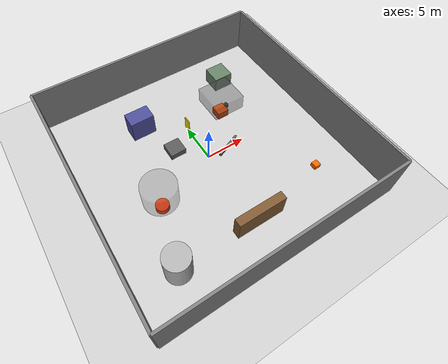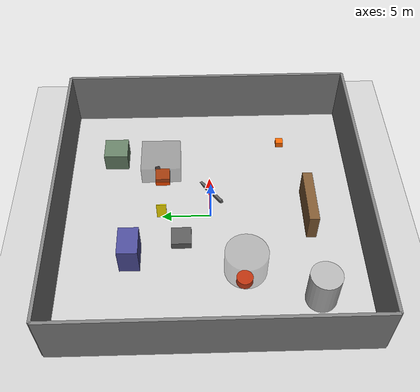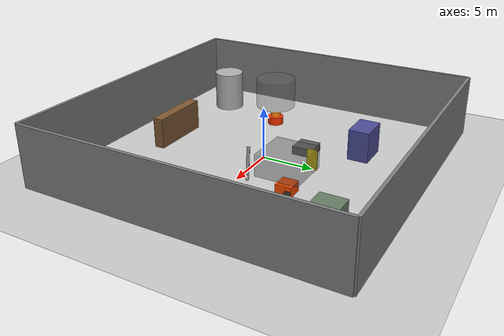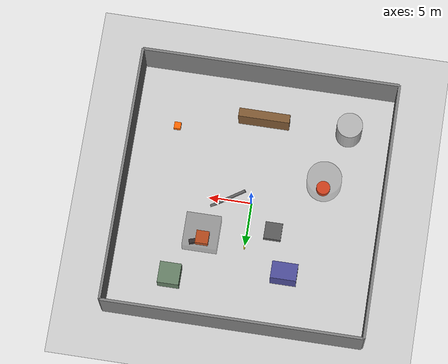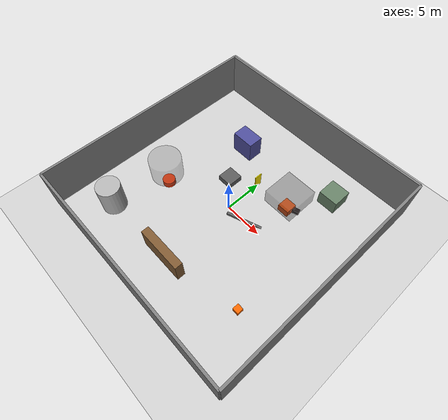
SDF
<?xml version="1.0" ?>
<sdf version="1.5">
  <world name="fire_scene">
    <!-- 光源 -->
    <include>
      <uri>model://sun</uri>
    </include>
    <include>
      <uri>model://ground_plane</uri>
    </include>

    <!-- 物理引擎 -->
    <physics name='default_physics' default='0' type='ode'>
      <gravity>0 0 -9.8066</gravity>
      <max_step_size>0.004</max_step_size>
      <real_time_factor>1</real_time_factor>
      <real_time_update_rate>250</real_time_update_rate>
    </physics>

    <!-- ========== 工厂建筑外墙 (30m x 30m) ========== -->

    <!-- 北墙 -->
    <model name="wall_north">
      <static>true</static>
      <pose>0 15 3 0 0 0</pose>
      <link name="link">
        <collision name="collision">
          <geometry><box><size>30 0.3 6</size></box></geometry>
        </collision>
        <visual name="visual">
          <geometry><box><size>30 0.3 6</size></box></geometry>
          <material>
            <ambient>0.5 0.5 0.5 1</ambient>
            <diffuse>0.5 0.5 0.5 1</diffuse>
          </material>
        </visual>
      </link>
    </model>

    <!-- 南墙 -->
    <model name="wall_south">
      <static>true</static>
      <pose>0 -15 3 0 0 0</pose>
      <link name="link">
        <collision name="collision">
          <geometry><box><size>30 0.3 6</size></box></geometry>
        </collision>
        <visual name="visual">
          <geometry><box><size>30 0.3 6</size></box></geometry>
          <material>
            <ambient>0.5 0.5 0.5 1</ambient>
            <diffuse>0.5 0.5 0.5 1</diffuse>
          </material>
        </visual>
      </link>
    </model>

    <!-- 东墙 -->
    <model name="wall_east">
      <static>true</static>
      <pose>15 0 3 0 0 0</pose>
      <link name="link">
        <collision name="collision">
          <geometry><box><size>0.3 30 6</size></box></geometry>
        </collision>
        <visual name="visual">
          <geometry><box><size>0.3 30 6</size></box></geometry>
          <material>
            <ambient>0.5 0.5 0.5 1</ambient>
            <diffuse>0.5 0.5 0.5 1</diffuse>
          </material>
        </visual>
      </link>
    </model>

    <!-- 西墙 -->
    <model name="wall_west">
      <static>true</static>
      <pose>-15 0 3 0 0 0</pose>
      <link name="link">
        <collision name="collision">
          <geometry><box><size>0.3 30 6</size></box></geometry>
        </collision>
        <visual name="visual">
          <geometry><box><size>0.3 30 6</size></box></geometry>
          <material>
            <ambient>0.5 0.5 0.5 1</ambient>
            <diffuse>0.5 0.5 0.5 1</diffuse>
          </material>
        </visual>
      </link>
    </model>

    <!-- ========== 火源点 1 - 红色/橙色立方体模拟火焰 ========== -->
    <model name="fire_1">
      <static>true</static>
      <pose>5 5 0.5 0 0 0</pose>
      <link name="link">
        <visual name="fire_core">
          <geometry><box><size>1.5 1.5 1</size></box></geometry>
          <material>
            <ambient>1 0.3 0 1</ambient>
            <diffuse>1 0.3 0 1</diffuse>
            <emissive>1 0.5 0 1</emissive>
          </material>
        </visual>
      </link>
    </model>

    <model name="fire_1_glow">
      <static>true</static>
      <pose>5 5 1.2 0 0 0</pose>
      <link name="link">
        <visual name="glow">
          <geometry><box><size>1 1 0.8</size></box></geometry>
          <material>
            <ambient>1 0.6 0 0.8</ambient>
            <diffuse>1 0.6 0 0.8</diffuse>
            <emissive>1 0.8 0.2 1</emissive>
          </material>
        </visual>
      </link>
    </model>

    <!-- 火源旁边的燃烧物（黑色烧焦） -->
    <model name="burned_debris_1">
      <static>true</static>
      <pose>6 5.5 0.3 0 0 0.3</pose>
      <link name="link">
        <collision name="collision">
          <geometry><box><size>1 0.5 0.6</size></box></geometry>
        </collision>
        <visual name="visual">
          <geometry><box><size>1 0.5 0.6</size></box></geometry>
          <material>
            <ambient>0.1 0.1 0.1 1</ambient>
            <diffuse>0.15 0.1 0.1 1</diffuse>
          </material>
        </visual>
      </link>
    </model>

    <!-- ========== 火源点 2 ========== -->
    <model name="fire_2">
      <static>true</static>
      <pose>-8 -3 0.4 0 0 0</pose>
      <link name="link">
        <visual name="fire_core">
          <geometry><cylinder><radius>0.8</radius><length>0.8</length></cylinder></geometry>
          <material>
            <ambient>1 0.2 0 1</ambient>
            <diffuse>1 0.2 0 1</diffuse>
            <emissive>1 0.4 0 1</emissive>
          </material>
        </visual>
      </link>
    </model>

    <model name="fire_2_glow">
      <static>true</static>
      <pose>-8 -3 1 0 0 0</pose>
      <link name="link">
        <visual name="glow">
          <geometry><cylinder><radius>0.5</radius><length>0.6</length></cylinder></geometry>
          <material>
            <ambient>1 0.7 0.1 0.7</ambient>
            <diffuse>1 0.7 0.1 0.7</diffuse>
            <emissive>1 0.9 0.3 1</emissive>
          </material>
        </visual>
      </link>
    </model>

    <!-- ========== 火源点 3 - 小火 ========== -->
    <model name="fire_3">
      <static>true</static>
      <pose>10 -8 0.3 0 0 0</pose>
      <link name="link">
        <visual name="fire_core">
          <geometry><box><size>0.8 0.8 0.6</size></box></geometry>
          <material>
            <ambient>1 0.4 0 1</ambient>
            <diffuse>1 0.4 0 1</diffuse>
            <emissive>1 0.6 0.1 1</emissive>
          </material>
        </visual>
      </link>
    </model>

    <!-- ========== 烟雾区域（灰色半透明） ========== -->
    <model name="smoke_1">
      <static>true</static>
      <pose>5 5 3 0 0 0</pose>
      <link name="link">
        <visual name="smoke">
          <geometry><box><size>4 4 2</size></box></geometry>
          <material>
            <ambient>0.3 0.3 0.3 0.4</ambient>
            <diffuse>0.3 0.3 0.3 0.4</diffuse>
          </material>
        </visual>
      </link>
    </model>

    <model name="smoke_2">
      <static>true</static>
      <pose>-8 -3 3.5 0 0 0</pose>
      <link name="link">
        <visual name="smoke">
          <geometry><cylinder><radius>2</radius><length>3</length></cylinder></geometry>
          <material>
            <ambient>0.4 0.4 0.4 0.3</ambient>
            <diffuse>0.4 0.4 0.4 0.3</diffuse>
          </material>
        </visual>
      </link>
    </model>

    <!-- ========== 工厂设备/障碍物 ========== -->

    <!-- 机器 1 -->
    <model name="machine_1">
      <static>true</static>
      <pose>-5 8 1.5 0 0 0</pose>
      <link name="link">
        <collision name="collision">
          <geometry><box><size>3 2 3</size></box></geometry>
        </collision>
        <visual name="visual">
          <geometry><box><size>3 2 3</size></box></geometry>
          <material>
            <ambient>0.3 0.3 0.6 1</ambient>
            <diffuse>0.3 0.3 0.6 1</diffuse>
          </material>
        </visual>
      </link>
    </model>

    <!-- 机器 2 -->
    <model name="machine_2">
      <static>true</static>
      <pose>8 10 1 0 0 0</pose>
      <link name="link">
        <collision name="collision">
          <geometry><box><size>2.5 2.5 2</size></box></geometry>
        </collision>
        <visual name="visual">
          <geometry><box><size>2.5 2.5 2</size></box></geometry>
          <material>
            <ambient>0.4 0.5 0.4 1</ambient>
            <diffuse>0.4 0.5 0.4 1</diffuse>
          </material>
        </visual>
      </link>
    </model>

    <!-- 储罐 (圆柱体) -->
    <model name="tank_1">
      <static>true</static>
      <pose>-10 -10 2 0 0 0</pose>
      <link name="link">
        <collision name="collision">
          <geometry><cylinder><radius>1.5</radius><length>4</length></cylinder></geometry>
        </collision>
        <visual name="visual">
          <geometry><cylinder><radius>1.5</radius><length>4</length></cylinder></geometry>
          <material>
            <ambient>0.6 0.6 0.6 1</ambient>
            <diffuse>0.7 0.7 0.7 1</diffuse>
          </material>
        </visual>
      </link>
    </model>

    <!-- 货架 -->
    <model name="shelf_1">
      <static>true</static>
      <pose>0 -10 1.5 0 0 0</pose>
      <link name="link">
        <collision name="collision">
          <geometry><box><size>6 1 3</size></box></geometry>
        </collision>
        <visual name="visual">
          <geometry><box><size>6 1 3</size></box></geometry>
          <material>
            <ambient>0.5 0.35 0.2 1</ambient>
            <diffuse>0.5 0.35 0.2 1</diffuse>
          </material>
        </visual>
      </link>
    </model>

    <!-- 倒塌的梁（灾难元素） -->
    <model name="fallen_beam">
      <static>true</static>
      <pose>3 0 0.4 0 0.3 0.5</pose>
      <link name="link">
        <collision name="collision">
          <geometry><box><size>5 0.3 0.3</size></box></geometry>
        </collision>
        <visual name="visual">
          <geometry><box><size>5 0.3 0.3</size></box></geometry>
          <material>
            <ambient>0.4 0.4 0.4 1</ambient>
            <diffuse>0.4 0.4 0.4 1</diffuse>
          </material>
        </visual>
      </link>
    </model>

    <!-- 碎片堆 -->
    <model name="debris_pile">
      <static>true</static>
      <pose>-3 3 0.4 0 0 0</pose>
      <link name="link">
        <collision name="collision">
          <geometry><box><size>2 2 0.8</size></box></geometry>
        </collision>
        <visual name="visual">
          <geometry><box><size>2 2 0.8</size></box></geometry>
          <material>
            <ambient>0.3 0.3 0.3 1</ambient>
            <diffuse>0.35 0.35 0.35 1</diffuse>
          </material>
        </visual>
      </link>
    </model>

    <!-- 警示标志（黄色） -->
    <model name="warning_sign">
      <static>true</static>
      <pose>0 5 1 0 0 0</pose>
      <link name="link">
        <visual name="visual">
          <geometry><box><size>0.1 1 2</size></box></geometry>
          <material>
            <ambient>1 0.9 0 1</ambient>
            <diffuse>1 0.9 0 1</diffuse>
          </material>
        </visual>
      </link>
    </model>

  </world>
</sdf>
